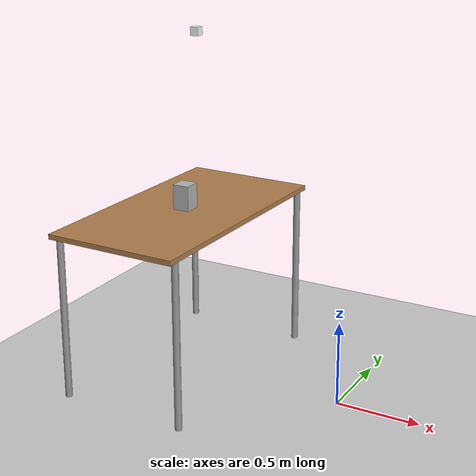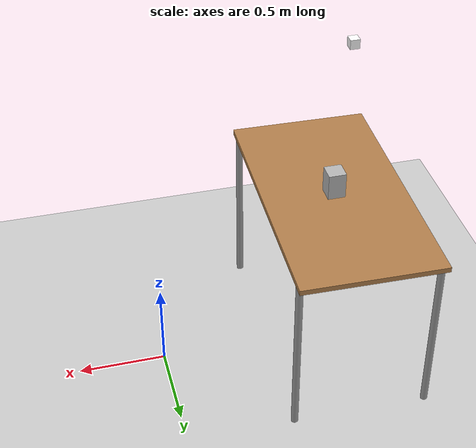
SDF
<sdf version="1.6">
 <world name="default">
  <light type="directional" name="light">
   <pose>0 0 10 0 0 0</pose>
   <diffuse>0.8 0.8 0.8 1</diffuse>
   <specular>0.2 0.2 0.2 1</specular>
   <attenuation>
    <range>1000</range>
    <constant>0.9</constant>
    <linear>0.01</linear>
    <quadratic>0.001</quadratic>
   </attenuation>
   <direction>-0.5 0.1 -0.9</direction>
  </light>
  <include><uri>model://ground_plane</uri></include>
  <include><uri>model://table</uri><pose>-1.0 0 0 0 0 1.550000</pose></include>
  <include><uri>model://tea_box</uri><pose>-1.0 0.0 1.015200 0 0 0</pose></include>
  <include><uri>model://wood_cube_5cm</uri><pose>-1.0 0.15 2.000593 0 0 0</pose></include>
 </world>
</sdf>

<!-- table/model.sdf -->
<sdf version="1.5">
  <model name="table">
    <static>true</static>
    <link name="link">
      <collision name="surface">
        <pose>0 0 1.0 0 0 0</pose>
        <geometry>
          <box>
            <size>1.5 0.8 0.03</size>
          </box>
        </geometry>
        <surface>
          <friction>
            <ode>
              <mu>0.6</mu>
              <mu2>0.6</mu2>
            </ode>
          </friction>
        </surface>
      </collision>
      <visual name="visual1">
        <pose>0 0 1.0 0 0 0</pose>
        <geometry>
          <box>
            <size>1.5 0.8 0.03</size>
          </box>
        </geometry>
        <material>
          <script>
            <uri>model://media/materials/scripts/gazebo.material</uri>
            <name>Gazebo/Wood</name>
          </script>
        </material>
      </visual>
      <collision name="front_left_leg">
        <pose>0.68 0.38 0.5 0 0 0</pose>
        <geometry>
          <cylinder>
            <radius>0.02</radius>
            <length>1.0</length>
          </cylinder>
        </geometry>
      </collision>
      <visual name="front_left_leg">
        <pose>0.68 0.38 0.5 0 0 0</pose>
        <geometry>
          <cylinder>
            <radius>0.02</radius>
            <length>1.0</length>
          </cylinder>
        </geometry>
        <material>
          <script>
            <uri>model://media/materials/scripts/gazebo.material</uri>
            <name>Gazebo/Grey</name>
          </script>
        </material>
      </visual>
      <collision name="front_right_leg">
        <pose>0.68 -0.38 0.5 0 0 0</pose>
        <geometry>
          <cylinder>
            <radius>0.02</radius>
            <length>1.0</length>
          </cylinder>
        </geometry>
      </collision>
      <visual name="front_right_leg">
        <pose>0.68 -0.38 0.5 0 0 0</pose>
        <geometry>
          <cylinder>
            <radius>0.02</radius>
            <length>1.0</length>
          </cylinder>
        </geometry>
        <material>
          <script>
            <uri>model://media/materials/scripts/gazebo.material</uri>
            <name>Gazebo/Grey</name>
          </script>
        </material>
      </visual>
      <collision name="back_right_leg">
        <pose>-0.68 -0.38 0.5 0 0 0</pose>
        <geometry>
          <cylinder>
            <radius>0.02</radius>
            <length>1.0</length>
          </cylinder>
        </geometry>
      </collision>
      <visual name="back_right_leg">
        <pose>-0.68 -0.38 0.5 0 0 0</pose>
        <geometry>
          <cylinder>
            <radius>0.02</radius>
            <length>1.0</length>
          </cylinder>
        </geometry>
        <material>
          <script>
            <uri>model://media/materials/scripts/gazebo.material</uri>
            <name>Gazebo/Grey</name>
          </script>
        </material>
      </visual>
      <collision name="back_left_leg">
        <pose>-0.68 0.38 0.5 0 0 0</pose>
        <geometry>
          <cylinder>
            <radius>0.02</radius>
            <length>1.0</length>
          </cylinder>
        </geometry>
      </collision>
      <visual name="back_left_leg">
        <pose>-0.68 0.38 0.5 0 0 0</pose>
        <geometry>
          <cylinder>
            <radius>0.02</radius>
            <length>1.0</length>
          </cylinder>
        </geometry>
        <material>
          <script>
            <uri>model://media/materials/scripts/gazebo.material</uri>
            <name>Gazebo/Grey</name>
          </script>
        </material>
      </visual>
    </link>
  </model>
</sdf>

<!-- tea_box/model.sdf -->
<sdf version='1.6'>
  <model name='tea_box'>
    <link name='link'>
  <pose frame=''>0 0 0.075 0 -0 0</pose>
      <visual name='visual'>
        <geometry>
          <box>
            <size>0.1 0.1 0.15</size>
          </box>
        </geometry>
             <material>
          <script>
            <uri>model://tea_box/materials/scripts</uri>
            <uri>model://tea_box/materials/textures</uri>
            <name>tea_pat</name>
          </script>
        </material>

        <cast_shadows>1</cast_shadows>
        <transparency>0</transparency>
      </visual>
      <collision name='collision'>
        <laser_retro>0</laser_retro>
        <max_contacts>10</max_contacts>
        <pose frame=''>0 0 0 0 -0 0</pose>
        <geometry>
          <box>
            <size>0.1 0.1 0.15</size>
          </box>
        </geometry>
       </collision>
    </link>
    <static>1</static>
    <allow_auto_disable>1</allow_auto_disable>
  </model>
</sdf>

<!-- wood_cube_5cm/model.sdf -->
<sdf version="1.5">
  <model name="wood_cube_5cm">
    <link name="link">
      <pose>0 0 0.025 0 0 0</pose>
      <inertial>
        <mass>0.0565</mass>
        <inertia>
          <ixx>2.3541666666666672e-05</ixx>
          <ixy>0</ixy>
          <ixz>0</ixz>
          <iyy>2.3541666666666672e-05</iyy>
          <iyz>0</iyz>
          <izz>2.3541666666666672e-05</izz>
        </inertia>
      </inertial>

      <collision name="collision">
        <geometry>
          <box>
            <size>0.05 0.05 0.05</size>
          </box>
        </geometry>
        <surface>
          <contact>
            <!-- Red Pine coefficients for longitudinal axis of the wood
                 according to:
                 http://www.fpl.fs.fed.us/documnts/fplgtr/fplgtr113/ch04.pdf -->
            <poissons_ratio>0.347</poissons_ratio>
            <elastic_modulus>8.8e+09</elastic_modulus>
            <ode>
              <kp>100000</kp>
              <kd>1</kd>
              <max_vel>1.0</max_vel>
              <min_depth>0.001</min_depth>
            </ode>
          </contact>
          <friction>
            <torsional>
              <coefficient>1.0</coefficient>
              <use_patch_radius>0</use_patch_radius>
              <surface_radius>0.05</surface_radius>
            </torsional>
          </friction>
        </surface>
      </collision>

      <visual name="visual">
        <geometry>
          <box>
            <size>0.05 0.05 0.05</size>
          </box>
        </geometry>
        <material><diffuse>1 1 1 1</diffuse><specular>0.1 0.1 0.1 1</specular></material>
      </visual>

    </link>
  </model>
</sdf>
